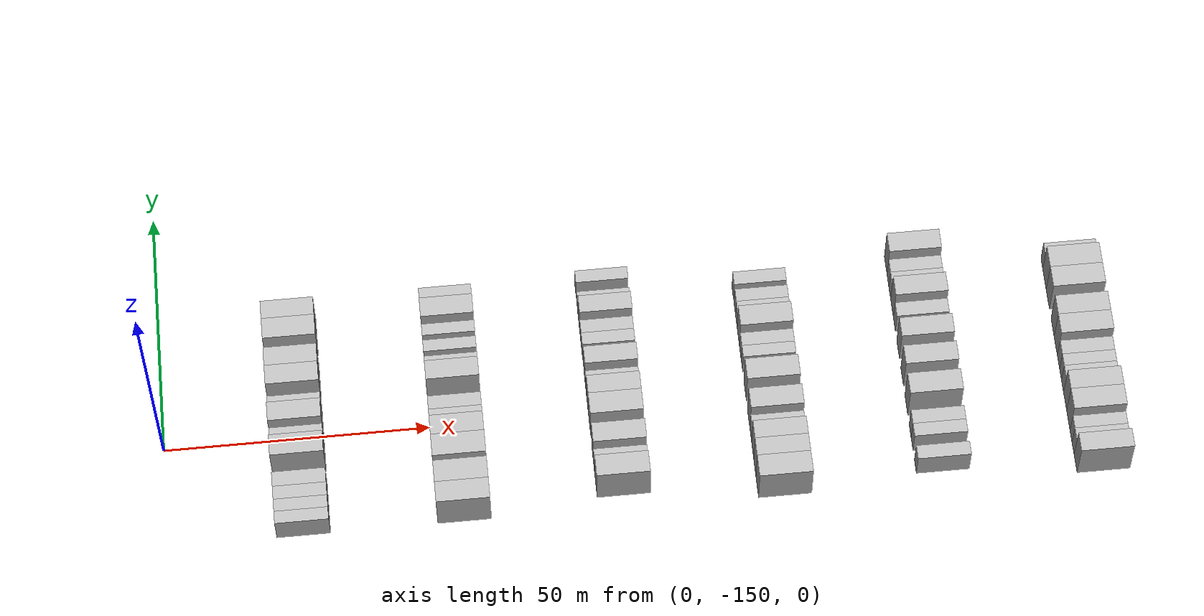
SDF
<sdf version="1.6">
 <world name="default">
  <model name="building_76">
   <static>1</static>
   <pose>25.0000 -168.9437 0 0.000000 0.000000 0.000000</pose>
   <link name="link">
    <pose>0 0 3.00 0 0 0</pose>
    <collision name="collision"><geometry><box><size>10.0000 2.5226 6.0000</size></box></geometry></collision>
    <visual name="visual">
     <cast_shadows>0</cast_shadows>
     <geometry><box><size>10.0000 2.5226 6.0000</size></box></geometry>
     <material>
      <script>
       <uri>model://HANNAS_wall/materials/scripts</uri>
       <uri>model://HANNAS_wall/materials/textures</uri>
       <name>vrc/HANNAS_wall</name>
      </script>
     </material>
    </visual>
   </link>
  </model>
  <model name="building_77">
   <static>1</static>
   <pose>25.0000 -166.4283 0 0.000000 0.000000 0.000000</pose>
   <link name="link">
    <pose>0 0 3.00 0 0 0</pose>
    <collision name="collision"><geometry><box><size>10.0000 2.5082 6.0000</size></box></geometry></collision>
    <visual name="visual">
     <cast_shadows>0</cast_shadows>
     <geometry><box><size>10.0000 2.5082 6.0000</size></box></geometry>
     <material>
      <script>
       <uri>model://HANNAS_wall/materials/scripts</uri>
       <uri>model://HANNAS_wall/materials/textures</uri>
       <name>vrc/HANNAS_wall</name>
      </script>
     </material>
    </visual>
   </link>
  </model>
  <model name="building_78">
   <static>1</static>
   <pose>25.0000 -163.8319 0 0.000000 0.000000 0.000000</pose>
   <link name="link">
    <pose>0 0 3.00 0 0 0</pose>
    <collision name="collision"><geometry><box><size>10.0000 2.6846 6.0000</size></box></geometry></collision>
    <visual name="visual">
     <cast_shadows>0</cast_shadows>
     <geometry><box><size>10.0000 2.6846 6.0000</size></box></geometry>
     <material>
      <script>
       <uri>model://HANNAS_wall/materials/scripts</uri>
       <uri>model://HANNAS_wall/materials/textures</uri>
       <name>vrc/HANNAS_wall</name>
      </script>
     </material>
    </visual>
   </link>
  </model>
  <model name="building_79">
   <static>1</static>
   <pose>25.0000 -161.0014 0 0.000000 0.000000 0.000000</pose>
   <link name="link">
    <pose>0 0 3.00 0 0 0</pose>
    <collision name="collision"><geometry><box><size>10.0000 2.9763 6.0000</size></box></geometry></collision>
    <visual name="visual">
     <cast_shadows>0</cast_shadows>
     <geometry><box><size>10.0000 2.9763 6.0000</size></box></geometry>
     <material>
      <script>
       <uri>model://HANNAS_wall/materials/scripts</uri>
       <uri>model://HANNAS_wall/materials/textures</uri>
       <name>vrc/HANNAS_wall</name>
      </script>
     </material>
    </visual>
   </link>
  </model>
  <model name="building_80">
   <static>1</static>
   <pose>25.0000 -155.3765 0 0.000000 0.000000 0.000000</pose>
   <link name="link">
    <pose>0 0 4.50 0 0 0</pose>
    <collision name="collision"><geometry><box><size>10.0000 4.2736 9.0000</size></box></geometry></collision>
    <visual name="visual">
     <cast_shadows>0</cast_shadows>
     <geometry><box><size>10.0000 4.2736 9.0000</size></box></geometry>
     <material>
      <script>
       <uri>model://HANNAS_wall/materials/scripts</uri>
       <uri>model://HANNAS_wall/materials/textures</uri>
       <name>vrc/HANNAS_wall</name>
      </script>
     </material>
    </visual>
   </link>
  </model>
  <model name="building_81">
   <static>1</static>
   <pose>25.0000 -151.7498 0 0.000000 0.000000 0.000000</pose>
   <link name="link">
    <pose>0 0 3.00 0 0 0</pose>
    <collision name="collision"><geometry><box><size>10.0000 2.9797 6.0000</size></box></geometry></collision>
    <visual name="visual">
     <cast_shadows>0</cast_shadows>
     <geometry><box><size>10.0000 2.9797 6.0000</size></box></geometry>
     <material>
      <script>
       <uri>model://HANNAS_wall/materials/scripts</uri>
       <uri>model://HANNAS_wall/materials/textures</uri>
       <name>vrc/HANNAS_wall</name>
      </script>
     </material>
    </visual>
   </link>
  </model>
  <model name="building_82">
   <static>1</static>
   <pose>25.0000 -148.3177 0 0.000000 0.000000 0.000000</pose>
   <link name="link">
    <pose>0 0 4.50 0 0 0</pose>
    <collision name="collision"><geometry><box><size>10.0000 3.8845 9.0000</size></box></geometry></collision>
    <visual name="visual">
     <cast_shadows>0</cast_shadows>
     <geometry><box><size>10.0000 3.8845 9.0000</size></box></geometry>
     <material>
      <script>
       <uri>model://HANNAS_wall/materials/scripts</uri>
       <uri>model://HANNAS_wall/materials/textures</uri>
       <name>vrc/HANNAS_wall</name>
      </script>
     </material>
    </visual>
   </link>
  </model>
  <model name="building_83">
   <static>1</static>
   <pose>25.0000 -144.9561 0 0.000000 0.000000 0.000000</pose>
   <link name="link">
    <pose>0 0 3.00 0 0 0</pose>
    <collision name="collision"><geometry><box><size>10.0000 2.8387 6.0000</size></box></geometry></collision>
    <visual name="visual">
     <cast_shadows>0</cast_shadows>
     <geometry><box><size>10.0000 2.8387 6.0000</size></box></geometry>
     <material>
      <script>
       <uri>model://HANNAS_wall/materials/scripts</uri>
       <uri>model://HANNAS_wall/materials/textures</uri>
       <name>vrc/HANNAS_wall</name>
      </script>
     </material>
    </visual>
   </link>
  </model>
  <model name="building_84">
   <static>1</static>
   <pose>25.0000 -140.5316 0 0.000000 0.000000 0.000000</pose>
   <link name="link">
    <pose>0 0 4.50 0 0 0</pose>
    <collision name="collision"><geometry><box><size>10.0000 4.0103 9.0000</size></box></geometry></collision>
    <visual name="visual">
     <cast_shadows>0</cast_shadows>
     <geometry><box><size>10.0000 4.0103 9.0000</size></box></geometry>
     <material>
      <script>
       <uri>model://HANNAS_wall/materials/scripts</uri>
       <uri>model://HANNAS_wall/materials/textures</uri>
       <name>vrc/HANNAS_wall</name>
      </script>
     </material>
    </visual>
   </link>
  </model>
  <model name="building_85">
   <static>1</static>
   <pose>25.0000 -136.6237 0 0.000000 0.000000 0.000000</pose>
   <link name="link">
    <pose>0 0 4.50 0 0 0</pose>
    <collision name="collision"><geometry><box><size>10.0000 3.8054 9.0000</size></box></geometry></collision>
    <visual name="visual">
     <cast_shadows>0</cast_shadows>
     <geometry><box><size>10.0000 3.8054 9.0000</size></box></geometry>
     <material>
      <script>
       <uri>model://HANNAS_wall/materials/scripts</uri>
       <uri>model://HANNAS_wall/materials/textures</uri>
       <name>vrc/HANNAS_wall</name>
      </script>
     </material>
    </visual>
   </link>
  </model>
  <model name="building_86">
   <static>1</static>
   <pose>25.0000 -130.5815 0 0.000000 0.000000 0.000000</pose>
   <link name="link">
    <pose>0 0 4.50 0 0 0</pose>
    <collision name="collision"><geometry><box><size>10.0000 4.2789 9.0000</size></box></geometry></collision>
    <visual name="visual">
     <cast_shadows>0</cast_shadows>
     <geometry><box><size>10.0000 4.2789 9.0000</size></box></geometry>
     <material>
      <script>
       <uri>model://HANNAS_wall/materials/scripts</uri>
       <uri>model://HANNAS_wall/materials/textures</uri>
       <name>vrc/HANNAS_wall</name>
      </script>
     </material>
    </visual>
   </link>
  </model>
  <model name="building_87">
   <static>1</static>
   <pose>25.0000 -126.5639 0 0.000000 0.000000 0.000000</pose>
   <link name="link">
    <pose>0 0 4.50 0 0 0</pose>
    <collision name="collision"><geometry><box><size>10.0000 3.7563 9.0000</size></box></geometry></collision>
    <visual name="visual">
     <cast_shadows>0</cast_shadows>
     <geometry><box><size>10.0000 3.7563 9.0000</size></box></geometry>
     <material>
      <script>
       <uri>model://HANNAS_wall/materials/scripts</uri>
       <uri>model://HANNAS_wall/materials/textures</uri>
       <name>vrc/HANNAS_wall</name>
      </script>
     </material>
    </visual>
   </link>
  </model>
  <model name="building_312">
   <static>1</static>
   <pose>55.0000 -168.0703 0 0.000000 0.000000 0.000000</pose>
   <link name="link">
    <pose>0 0 4.50 0 0 0</pose>
    <collision name="collision"><geometry><box><size>10.0000 4.1956 9.0000</size></box></geometry></collision>
    <visual name="visual">
     <cast_shadows>0</cast_shadows>
     <geometry><box><size>10.0000 4.1956 9.0000</size></box></geometry>
     <material>
      <script>
       <uri>model://HANNAS_wall/materials/scripts</uri>
       <uri>model://HANNAS_wall/materials/textures</uri>
       <name>vrc/HANNAS_wall</name>
      </script>
     </material>
    </visual>
   </link>
  </model>
  <model name="building_313">
   <static>1</static>
   <pose>55.0000 -163.7626 0 0.000000 0.000000 0.000000</pose>
   <link name="link">
    <pose>0 0 4.50 0 0 0</pose>
    <collision name="collision"><geometry><box><size>10.0000 4.4199 9.0000</size></box></geometry></collision>
    <visual name="visual">
     <cast_shadows>0</cast_shadows>
     <geometry><box><size>10.0000 4.4199 9.0000</size></box></geometry>
     <material>
      <script>
       <uri>model://HANNAS_wall/materials/scripts</uri>
       <uri>model://HANNAS_wall/materials/textures</uri>
       <name>vrc/HANNAS_wall</name>
      </script>
     </material>
    </visual>
   </link>
  </model>
  <model name="building_314">
   <static>1</static>
   <pose>55.0000 -158.3098 0 0.000000 0.000000 0.000000</pose>
   <link name="link">
    <pose>0 0 4.50 0 0 0</pose>
    <collision name="collision"><geometry><box><size>10.0000 4.4858 9.0000</size></box></geometry></collision>
    <visual name="visual">
     <cast_shadows>0</cast_shadows>
     <geometry><box><size>10.0000 4.4858 9.0000</size></box></geometry>
     <material>
      <script>
       <uri>model://HANNAS_wall/materials/scripts</uri>
       <uri>model://HANNAS_wall/materials/textures</uri>
       <name>vrc/HANNAS_wall</name>
      </script>
     </material>
    </visual>
   </link>
  </model>
  <model name="building_315">
   <static>1</static>
   <pose>55.0000 -154.0762 0 0.000000 0.000000 0.000000</pose>
   <link name="link">
    <pose>0 0 4.50 0 0 0</pose>
    <collision name="collision"><geometry><box><size>10.0000 3.9813 9.0000</size></box></geometry></collision>
    <visual name="visual">
     <cast_shadows>0</cast_shadows>
     <geometry><box><size>10.0000 3.9813 9.0000</size></box></geometry>
     <material>
      <script>
       <uri>model://HANNAS_wall/materials/scripts</uri>
       <uri>model://HANNAS_wall/materials/textures</uri>
       <name>vrc/HANNAS_wall</name>
      </script>
     </material>
    </visual>
   </link>
  </model>
  <model name="building_316">
   <static>1</static>
   <pose>55.0000 -150.6483 0 0.000000 0.000000 0.000000</pose>
   <link name="link">
    <pose>0 0 3.00 0 0 0</pose>
    <collision name="collision"><geometry><box><size>10.0000 2.8746 6.0000</size></box></geometry></collision>
    <visual name="visual">
     <cast_shadows>0</cast_shadows>
     <geometry><box><size>10.0000 2.8746 6.0000</size></box></geometry>
     <material>
      <script>
       <uri>model://HANNAS_wall/materials/scripts</uri>
       <uri>model://HANNAS_wall/materials/textures</uri>
       <name>vrc/HANNAS_wall</name>
      </script>
     </material>
    </visual>
   </link>
  </model>
  <model name="building_317">
   <static>1</static>
   <pose>55.0000 -147.8208 0 0.000000 0.000000 0.000000</pose>
   <link name="link">
    <pose>0 0 3.00 0 0 0</pose>
    <collision name="collision"><geometry><box><size>10.0000 2.7804 6.0000</size></box></geometry></collision>
    <visual name="visual">
     <cast_shadows>0</cast_shadows>
     <geometry><box><size>10.0000 2.7804 6.0000</size></box></geometry>
     <material>
      <script>
       <uri>model://HANNAS_wall/materials/scripts</uri>
       <uri>model://HANNAS_wall/materials/textures</uri>
       <name>vrc/HANNAS_wall</name>
      </script>
     </material>
    </visual>
   </link>
  </model>
  <model name="building_318">
   <static>1</static>
   <pose>55.0000 -142.4525 0 0.000000 0.000000 0.000000</pose>
   <link name="link">
    <pose>0 0 4.50 0 0 0</pose>
    <collision name="collision"><geometry><box><size>10.0000 3.9562 9.0000</size></box></geometry></collision>
    <visual name="visual">
     <cast_shadows>0</cast_shadows>
     <geometry><box><size>10.0000 3.9562 9.0000</size></box></geometry>
     <material>
      <script>
       <uri>model://HANNAS_wall/materials/scripts</uri>
       <uri>model://HANNAS_wall/materials/textures</uri>
       <name>vrc/HANNAS_wall</name>
      </script>
     </material>
    </visual>
   </link>
  </model>
  <model name="building_319">
   <static>1</static>
   <pose>55.0000 -139.1789 0 0.000000 0.000000 0.000000</pose>
   <link name="link">
    <pose>0 0 3.00 0 0 0</pose>
    <collision name="collision"><geometry><box><size>10.0000 2.5912 6.0000</size></box></geometry></collision>
    <visual name="visual">
     <cast_shadows>0</cast_shadows>
     <geometry><box><size>10.0000 2.5912 6.0000</size></box></geometry>
     <material>
      <script>
       <uri>model://HANNAS_wall/materials/scripts</uri>
       <uri>model://HANNAS_wall/materials/textures</uri>
       <name>vrc/HANNAS_wall</name>
      </script>
     </material>
    </visual>
   </link>
  </model>
  <model name="building_320">
   <static>1</static>
   <pose>55.0000 -135.6508 0 0.000000 0.000000 0.000000</pose>
   <link name="link">
    <pose>0 0 3.00 0 0 0</pose>
    <collision name="collision"><geometry><box><size>10.0000 2.4650 6.0000</size></box></geometry></collision>
    <visual name="visual">
     <cast_shadows>0</cast_shadows>
     <geometry><box><size>10.0000 2.4650 6.0000</size></box></geometry>
     <material>
      <script>
       <uri>model://HANNAS_wall/materials/scripts</uri>
       <uri>model://HANNAS_wall/materials/textures</uri>
       <name>vrc/HANNAS_wall</name>
      </script>
     </material>
    </visual>
   </link>
  </model>
  <model name="building_321">
   <static>1</static>
   <pose>55.0000 -132.1974 0 0.000000 0.000000 0.000000</pose>
   <link name="link">
    <pose>0 0 3.00 0 0 0</pose>
    <collision name="collision"><geometry><box><size>10.0000 2.4417 6.0000</size></box></geometry></collision>
    <visual name="visual">
     <cast_shadows>0</cast_shadows>
     <geometry><box><size>10.0000 2.4417 6.0000</size></box></geometry>
     <material>
      <script>
       <uri>model://HANNAS_wall/materials/scripts</uri>
       <uri>model://HANNAS_wall/materials/textures</uri>
       <name>vrc/HANNAS_wall</name>
      </script>
     </material>
    </visual>
   </link>
  </model>
  <model name="building_322">
   <static>1</static>
   <pose>55.0000 -128.9470 0 0.000000 0.000000 0.000000</pose>
   <link name="link">
    <pose>0 0 4.50 0 0 0</pose>
    <collision name="collision"><geometry><box><size>10.0000 4.0592 9.0000</size></box></geometry></collision>
    <visual name="visual">
     <cast_shadows>0</cast_shadows>
     <geometry><box><size>10.0000 4.0592 9.0000</size></box></geometry>
     <material>
      <script>
       <uri>model://HANNAS_wall/materials/scripts</uri>
       <uri>model://HANNAS_wall/materials/textures</uri>
       <name>vrc/HANNAS_wall</name>
      </script>
     </material>
    </visual>
   </link>
  </model>
  <model name="building_323">
   <static>1</static>
   <pose>55.0000 -124.5122 0 0.000000 0.000000 0.000000</pose>
   <link name="link">
    <pose>0 0 3.00 0 0 0</pose>
    <collision name="collision"><geometry><box><size>10.0000 2.8103 6.0000</size></box></geometry></collision>
    <visual name="visual">
     <cast_shadows>0</cast_shadows>
     <geometry><box><size>10.0000 2.8103 6.0000</size></box></geometry>
     <material>
      <script>
       <uri>model://HANNAS_wall/materials/scripts</uri>
       <uri>model://HANNAS_wall/materials/textures</uri>
       <name>vrc/HANNAS_wall</name>
      </script>
     </material>
    </visual>
   </link>
  </model>
  <model name="building_541">
   <static>1</static>
   <pose>85.0000 -165.5335 0 0.000000 0.000000 0.000000</pose>
   <link name="link">
    <pose>0 0 4.50 0 0 0</pose>
    <collision name="collision"><geometry><box><size>10.0000 4.3390 9.0000</size></box></geometry></collision>
    <visual name="visual">
     <cast_shadows>0</cast_shadows>
     <geometry><box><size>10.0000 4.3390 9.0000</size></box></geometry>
     <material>
      <script>
       <uri>model://HANNAS_wall/materials/scripts</uri>
       <uri>model://HANNAS_wall/materials/textures</uri>
       <name>vrc/HANNAS_wall</name>
      </script>
     </material>
    </visual>
   </link>
  </model>
  <model name="building_542">
   <static>1</static>
   <pose>85.0000 -161.9694 0 0.000000 0.000000 0.000000</pose>
   <link name="link">
    <pose>0 0 3.00 0 0 0</pose>
    <collision name="collision"><geometry><box><size>10.0000 2.7892 6.0000</size></box></geometry></collision>
    <visual name="visual">
     <cast_shadows>0</cast_shadows>
     <geometry><box><size>10.0000 2.7892 6.0000</size></box></geometry>
     <material>
      <script>
       <uri>model://HANNAS_wall/materials/scripts</uri>
       <uri>model://HANNAS_wall/materials/textures</uri>
       <name>vrc/HANNAS_wall</name>
      </script>
     </material>
    </visual>
   </link>
  </model>
  <model name="building_543">
   <static>1</static>
   <pose>85.0000 -158.6004 0 0.000000 0.000000 0.000000</pose>
   <link name="link">
    <pose>0 0 4.50 0 0 0</pose>
    <collision name="collision"><geometry><box><size>10.0000 3.9488 9.0000</size></box></geometry></collision>
    <visual name="visual">
     <cast_shadows>0</cast_shadows>
     <geometry><box><size>10.0000 3.9488 9.0000</size></box></geometry>
     <material>
      <script>
       <uri>model://HANNAS_wall/materials/scripts</uri>
       <uri>model://HANNAS_wall/materials/textures</uri>
       <name>vrc/HANNAS_wall</name>
      </script>
     </material>
    </visual>
   </link>
  </model>
  <model name="building_544">
   <static>1</static>
   <pose>85.0000 -152.4462 0 0.000000 0.000000 0.000000</pose>
   <link name="link">
    <pose>0 0 4.50 0 0 0</pose>
    <collision name="collision"><geometry><box><size>10.0000 4.3594 9.0000</size></box></geometry></collision>
    <visual name="visual">
     <cast_shadows>0</cast_shadows>
     <geometry><box><size>10.0000 4.3594 9.0000</size></box></geometry>
     <material>
      <script>
       <uri>model://HANNAS_wall/materials/scripts</uri>
       <uri>model://HANNAS_wall/materials/textures</uri>
       <name>vrc/HANNAS_wall</name>
      </script>
     </material>
    </visual>
   </link>
  </model>
  <model name="building_545">
   <static>1</static>
   <pose>85.0000 -148.4080 0 0.000000 0.000000 0.000000</pose>
   <link name="link">
    <pose>0 0 4.50 0 0 0</pose>
    <collision name="collision"><geometry><box><size>10.0000 3.7171 9.0000</size></box></geometry></collision>
    <visual name="visual">
     <cast_shadows>0</cast_shadows>
     <geometry><box><size>10.0000 3.7171 9.0000</size></box></geometry>
     <material>
      <script>
       <uri>model://HANNAS_wall/materials/scripts</uri>
       <uri>model://HANNAS_wall/materials/textures</uri>
       <name>vrc/HANNAS_wall</name>
      </script>
     </material>
    </visual>
   </link>
  </model>
  <model name="building_546">
   <static>1</static>
   <pose>85.0000 -145.2552 0 0.000000 0.000000 0.000000</pose>
   <link name="link">
    <pose>0 0 3.00 0 0 0</pose>
    <collision name="collision"><geometry><box><size>10.0000 2.5886 6.0000</size></box></geometry></collision>
    <visual name="visual">
     <cast_shadows>0</cast_shadows>
     <geometry><box><size>10.0000 2.5886 6.0000</size></box></geometry>
     <material>
      <script>
       <uri>model://HANNAS_wall/materials/scripts</uri>
       <uri>model://HANNAS_wall/materials/textures</uri>
       <name>vrc/HANNAS_wall</name>
      </script>
     </material>
    </visual>
   </link>
  </model>
  <model name="building_547">
   <static>1</static>
   <pose>85.0000 -142.1517 0 0.000000 0.000000 0.000000</pose>
   <link name="link">
    <pose>0 0 4.50 0 0 0</pose>
    <collision name="collision"><geometry><box><size>10.0000 3.6185 9.0000</size></box></geometry></collision>
    <visual name="visual">
     <cast_shadows>0</cast_shadows>
     <geometry><box><size>10.0000 3.6185 9.0000</size></box></geometry>
     <material>
      <script>
       <uri>model://HANNAS_wall/materials/scripts</uri>
       <uri>model://HANNAS_wall/materials/textures</uri>
       <name>vrc/HANNAS_wall</name>
      </script>
     </material>
    </visual>
   </link>
  </model>
  <model name="building_548">
   <static>1</static>
   <pose>85.0000 -137.0522 0 0.000000 0.000000 0.000000</pose>
   <link name="link">
    <pose>0 0 3.00 0 0 0</pose>
    <collision name="collision"><geometry><box><size>10.0000 2.5805 6.0000</size></box></geometry></collision>
    <visual name="visual">
     <cast_shadows>0</cast_shadows>
     <geometry><box><size>10.0000 2.5805 6.0000</size></box></geometry>
     <material>
      <script>
       <uri>model://HANNAS_wall/materials/scripts</uri>
       <uri>model://HANNAS_wall/materials/textures</uri>
       <name>vrc/HANNAS_wall</name>
      </script>
     </material>
    </visual>
   </link>
  </model>
  <model name="building_549">
   <static>1</static>
   <pose>85.0000 -134.3948 0 0.000000 0.000000 0.000000</pose>
   <link name="link">
    <pose>0 0 3.00 0 0 0</pose>
    <collision name="collision"><geometry><box><size>10.0000 2.7343 6.0000</size></box></geometry></collision>
    <visual name="visual">
     <cast_shadows>0</cast_shadows>
     <geometry><box><size>10.0000 2.7343 6.0000</size></box></geometry>
     <material>
      <script>
       <uri>model://HANNAS_wall/materials/scripts</uri>
       <uri>model://HANNAS_wall/materials/textures</uri>
       <name>vrc/HANNAS_wall</name>
      </script>
     </material>
    </visual>
   </link>
  </model>
  <model name="building_550">
   <static>1</static>
   <pose>85.0000 -131.2102 0 0.000000 0.000000 0.000000</pose>
   <link name="link">
    <pose>0 0 4.50 0 0 0</pose>
    <collision name="collision"><geometry><box><size>10.0000 3.6349 9.0000</size></box></geometry></collision>
    <visual name="visual">
     <cast_shadows>0</cast_shadows>
     <geometry><box><size>10.0000 3.6349 9.0000</size></box></geometry>
     <material>
      <script>
       <uri>model://HANNAS_wall/materials/scripts</uri>
       <uri>model://HANNAS_wall/materials/textures</uri>
       <name>vrc/HANNAS_wall</name>
      </script>
     </material>
    </visual>
   </link>
  </model>
  <model name="building_551">
   <static>1</static>
   <pose>85.0000 -128.1095 0 0.000000 0.000000 0.000000</pose>
   <link name="link">
    <pose>0 0 3.00 0 0 0</pose>
    <collision name="collision"><geometry><box><size>10.0000 2.5664 6.0000</size></box></geometry></collision>
    <visual name="visual">
     <cast_shadows>0</cast_shadows>
     <geometry><box><size>10.0000 2.5664 6.0000</size></box></geometry>
     <material>
      <script>
       <uri>model://HANNAS_wall/materials/scripts</uri>
       <uri>model://HANNAS_wall/materials/textures</uri>
       <name>vrc/HANNAS_wall</name>
      </script>
     </material>
    </visual>
   </link>
  </model>
  <model name="building_552">
   <static>1</static>
   <pose>85.0000 -123.5394 0 0.000000 0.000000 0.000000</pose>
   <link name="link">
    <pose>0 0 3.00 0 0 0</pose>
    <collision name="collision"><geometry><box><size>10.0000 2.5737 6.0000</size></box></geometry></collision>
    <visual name="visual">
     <cast_shadows>0</cast_shadows>
     <geometry><box><size>10.0000 2.5737 6.0000</size></box></geometry>
     <material>
      <script>
       <uri>model://HANNAS_wall/materials/scripts</uri>
       <uri>model://HANNAS_wall/materials/textures</uri>
       <name>vrc/HANNAS_wall</name>
      </script>
     </material>
    </visual>
   </link>
  </model>
  <model name="building_776">
   <static>1</static>
   <pose>115.0000 -168.4978 0 0.000000 0.000000 0.000000</pose>
   <link name="link">
    <pose>0 0 4.50 0 0 0</pose>
    <collision name="collision"><geometry><box><size>10.0000 4.3909 9.0000</size></box></geometry></collision>
    <visual name="visual">
     <cast_shadows>0</cast_shadows>
     <geometry><box><size>10.0000 4.3909 9.0000</size></box></geometry>
     <material>
      <script>
       <uri>model://HANNAS_wall/materials/scripts</uri>
       <uri>model://HANNAS_wall/materials/textures</uri>
       <name>vrc/HANNAS_wall</name>
      </script>
     </material>
    </visual>
   </link>
  </model>
  <model name="building_777">
   <static>1</static>
   <pose>115.0000 -164.5006 0 0.000000 0.000000 0.000000</pose>
   <link name="link">
    <pose>0 0 4.50 0 0 0</pose>
    <collision name="collision"><geometry><box><size>10.0000 3.6035 9.0000</size></box></geometry></collision>
    <visual name="visual">
     <cast_shadows>0</cast_shadows>
     <geometry><box><size>10.0000 3.6035 9.0000</size></box></geometry>
     <material>
      <script>
       <uri>model://HANNAS_wall/materials/scripts</uri>
       <uri>model://HANNAS_wall/materials/textures</uri>
       <name>vrc/HANNAS_wall</name>
      </script>
     </material>
    </visual>
   </link>
  </model>
  <model name="building_778">
   <static>1</static>
   <pose>115.0000 -160.8844 0 0.000000 0.000000 0.000000</pose>
   <link name="link">
    <pose>0 0 4.50 0 0 0</pose>
    <collision name="collision"><geometry><box><size>10.0000 3.6289 9.0000</size></box></geometry></collision>
    <visual name="visual">
     <cast_shadows>0</cast_shadows>
     <geometry><box><size>10.0000 3.6289 9.0000</size></box></geometry>
     <material>
      <script>
       <uri>model://HANNAS_wall/materials/scripts</uri>
       <uri>model://HANNAS_wall/materials/textures</uri>
       <name>vrc/HANNAS_wall</name>
      </script>
     </material>
    </visual>
   </link>
  </model>
  <model name="building_779">
   <static>1</static>
   <pose>115.0000 -157.6997 0 0.000000 0.000000 0.000000</pose>
   <link name="link">
    <pose>0 0 3.00 0 0 0</pose>
    <collision name="collision"><geometry><box><size>10.0000 2.7405 6.0000</size></box></geometry></collision>
    <visual name="visual">
     <cast_shadows>0</cast_shadows>
     <geometry><box><size>10.0000 2.7405 6.0000</size></box></geometry>
     <material>
      <script>
       <uri>model://HANNAS_wall/materials/scripts</uri>
       <uri>model://HANNAS_wall/materials/textures</uri>
       <name>vrc/HANNAS_wall</name>
      </script>
     </material>
    </visual>
   </link>
  </model>
  <model name="building_780">
   <static>1</static>
   <pose>115.0000 -154.2780 0 0.000000 0.000000 0.000000</pose>
   <link name="link">
    <pose>0 0 4.50 0 0 0</pose>
    <collision name="collision"><geometry><box><size>10.0000 4.1030 9.0000</size></box></geometry></collision>
    <visual name="visual">
     <cast_shadows>0</cast_shadows>
     <geometry><box><size>10.0000 4.1030 9.0000</size></box></geometry>
     <material>
      <script>
       <uri>model://HANNAS_wall/materials/scripts</uri>
       <uri>model://HANNAS_wall/materials/textures</uri>
       <name>vrc/HANNAS_wall</name>
      </script>
     </material>
    </visual>
   </link>
  </model>
  <model name="building_781">
   <static>1</static>
   <pose>115.0000 -148.0756 0 0.000000 0.000000 0.000000</pose>
   <link name="link">
    <pose>0 0 4.50 0 0 0</pose>
    <collision name="collision"><geometry><box><size>10.0000 4.3017 9.0000</size></box></geometry></collision>
    <visual name="visual">
     <cast_shadows>0</cast_shadows>
     <geometry><box><size>10.0000 4.3017 9.0000</size></box></geometry>
     <material>
      <script>
       <uri>model://HANNAS_wall/materials/scripts</uri>
       <uri>model://HANNAS_wall/materials/textures</uri>
       <name>vrc/HANNAS_wall</name>
      </script>
     </material>
    </visual>
   </link>
  </model>
  <model name="building_782">
   <static>1</static>
   <pose>115.0000 -142.6944 0 0.000000 0.000000 0.000000</pose>
   <link name="link">
    <pose>0 0 3.00 0 0 0</pose>
    <collision name="collision"><geometry><box><size>10.0000 2.4609 6.0000</size></box></geometry></collision>
    <visual name="visual">
     <cast_shadows>0</cast_shadows>
     <geometry><box><size>10.0000 2.4609 6.0000</size></box></geometry>
     <material>
      <script>
       <uri>model://HANNAS_wall/materials/scripts</uri>
       <uri>model://HANNAS_wall/materials/textures</uri>
       <name>vrc/HANNAS_wall</name>
      </script>
     </material>
    </visual>
   </link>
  </model>
  <model name="building_783">
   <static>1</static>
   <pose>115.0000 -140.0953 0 0.000000 0.000000 0.000000</pose>
   <link name="link">
    <pose>0 0 3.00 0 0 0</pose>
    <collision name="collision"><geometry><box><size>10.0000 2.7372 6.0000</size></box></geometry></collision>
    <visual name="visual">
     <cast_shadows>0</cast_shadows>
     <geometry><box><size>10.0000 2.7372 6.0000</size></box></geometry>
     <material>
      <script>
       <uri>model://HANNAS_wall/materials/scripts</uri>
       <uri>model://HANNAS_wall/materials/textures</uri>
       <name>vrc/HANNAS_wall</name>
      </script>
     </material>
    </visual>
   </link>
  </model>
  <model name="building_784">
   <static>1</static>
   <pose>115.0000 -136.6157 0 0.000000 0.000000 0.000000</pose>
   <link name="link">
    <pose>0 0 4.50 0 0 0</pose>
    <collision name="collision"><geometry><box><size>10.0000 4.2221 9.0000</size></box></geometry></collision>
    <visual name="visual">
     <cast_shadows>0</cast_shadows>
     <geometry><box><size>10.0000 4.2221 9.0000</size></box></geometry>
     <material>
      <script>
       <uri>model://HANNAS_wall/materials/scripts</uri>
       <uri>model://HANNAS_wall/materials/textures</uri>
       <name>vrc/HANNAS_wall</name>
      </script>
     </material>
    </visual>
   </link>
  </model>
  <model name="building_785">
   <static>1</static>
   <pose>115.0000 -133.1751 0 0.000000 0.000000 0.000000</pose>
   <link name="link">
    <pose>0 0 3.00 0 0 0</pose>
    <collision name="collision"><geometry><box><size>10.0000 2.6592 6.0000</size></box></geometry></collision>
    <visual name="visual">
     <cast_shadows>0</cast_shadows>
     <geometry><box><size>10.0000 2.6592 6.0000</size></box></geometry>
     <material>
      <script>
       <uri>model://HANNAS_wall/materials/scripts</uri>
       <uri>model://HANNAS_wall/materials/textures</uri>
       <name>vrc/HANNAS_wall</name>
      </script>
     </material>
    </visual>
   </link>
  </model>
  <model name="building_786">
   <static>1</static>
   <pose>115.0000 -130.5274 0 0.000000 0.000000 0.000000</pose>
   <link name="link">
    <pose>0 0 3.00 0 0 0</pose>
    <collision name="collision"><geometry><box><size>10.0000 2.6362 6.0000</size></box></geometry></collision>
    <visual name="visual">
     <cast_shadows>0</cast_shadows>
     <geometry><box><size>10.0000 2.6362 6.0000</size></box></geometry>
     <material>
      <script>
       <uri>model://HANNAS_wall/materials/scripts</uri>
       <uri>model://HANNAS_wall/materials/textures</uri>
       <name>vrc/HANNAS_wall</name>
      </script>
     </material>
    </visual>
   </link>
  </model>
  <model name="building_787">
   <static>1</static>
   <pose>115.0000 -126.8179 0 0.000000 0.000000 0.000000</pose>
   <link name="link">
    <pose>0 0 3.00 0 0 0</pose>
    <collision name="collision"><geometry><box><size>10.0000 2.7828 6.0000</size></box></geometry></collision>
    <visual name="visual">
     <cast_shadows>0</cast_shadows>
     <geometry><box><size>10.0000 2.7828 6.0000</size></box></geometry>
     <material>
      <script>
       <uri>model://HANNAS_wall/materials/scripts</uri>
       <uri>model://HANNAS_wall/materials/textures</uri>
       <name>vrc/HANNAS_wall</name>
      </script>
     </material>
    </visual>
   </link>
  </model>
  <model name="building_1001">
   <static>1</static>
   <pose>145.0000 -167.1326 0 0.000000 0.000000 0.000000</pose>
   <link name="link">
    <pose>0 0 3.00 0 0 0</pose>
    <collision name="collision"><geometry><box><size>10.0000 2.7938 6.0000</size></box></geometry></collision>
    <visual name="visual">
     <cast_shadows>0</cast_shadows>
     <geometry><box><size>10.0000 2.7938 6.0000</size></box></geometry>
     <material>
      <script>
       <uri>model://HANNAS_wall/materials/scripts</uri>
       <uri>model://HANNAS_wall/materials/textures</uri>
       <name>vrc/HANNAS_wall</name>
      </script>
     </material>
    </visual>
   </link>
  </model>
  <model name="building_1002">
   <static>1</static>
   <pose>145.0000 -162.3981 0 0.000000 0.000000 0.000000</pose>
   <link name="link">
    <pose>0 0 3.00 0 0 0</pose>
    <collision name="collision"><geometry><box><size>10.0000 2.6753 6.0000</size></box></geometry></collision>
    <visual name="visual">
     <cast_shadows>0</cast_shadows>
     <geometry><box><size>10.0000 2.6753 6.0000</size></box></geometry>
     <material>
      <script>
       <uri>model://HANNAS_wall/materials/scripts</uri>
       <uri>model://HANNAS_wall/materials/textures</uri>
       <name>vrc/HANNAS_wall</name>
      </script>
     </material>
    </visual>
   </link>
  </model>
  <model name="building_1003">
   <static>1</static>
   <pose>145.0000 -159.6450 0 0.000000 0.000000 0.000000</pose>
   <link name="link">
    <pose>0 0 3.00 0 0 0</pose>
    <collision name="collision"><geometry><box><size>10.0000 2.8309 6.0000</size></box></geometry></collision>
    <visual name="visual">
     <cast_shadows>0</cast_shadows>
     <geometry><box><size>10.0000 2.8309 6.0000</size></box></geometry>
     <material>
      <script>
       <uri>model://HANNAS_wall/materials/scripts</uri>
       <uri>model://HANNAS_wall/materials/textures</uri>
       <name>vrc/HANNAS_wall</name>
      </script>
     </material>
    </visual>
   </link>
  </model>
  <model name="building_1004">
   <static>1</static>
   <pose>145.0000 -154.0876 0 0.000000 0.000000 0.000000</pose>
   <link name="link">
    <pose>0 0 4.50 0 0 0</pose>
    <collision name="collision"><geometry><box><size>10.0000 4.2838 9.0000</size></box></geometry></collision>
    <visual name="visual">
     <cast_shadows>0</cast_shadows>
     <geometry><box><size>10.0000 4.2838 9.0000</size></box></geometry>
     <material>
      <script>
       <uri>model://HANNAS_wall/materials/scripts</uri>
       <uri>model://HANNAS_wall/materials/textures</uri>
       <name>vrc/HANNAS_wall</name>
      </script>
     </material>
    </visual>
   </link>
  </model>
  <model name="building_1005">
   <static>1</static>
   <pose>145.0000 -147.9858 0 0.000000 0.000000 0.000000</pose>
   <link name="link">
    <pose>0 0 4.50 0 0 0</pose>
    <collision name="collision"><geometry><box><size>10.0000 3.9200 9.0000</size></box></geometry></collision>
    <visual name="visual">
     <cast_shadows>0</cast_shadows>
     <geometry><box><size>10.0000 3.9200 9.0000</size></box></geometry>
     <material>
      <script>
       <uri>model://HANNAS_wall/materials/scripts</uri>
       <uri>model://HANNAS_wall/materials/textures</uri>
       <name>vrc/HANNAS_wall</name>
      </script>
     </material>
    </visual>
   </link>
  </model>
  <model name="building_1006">
   <static>1</static>
   <pose>145.0000 -142.0435 0 0.000000 0.000000 0.000000</pose>
   <link name="link">
    <pose>0 0 4.50 0 0 0</pose>
    <collision name="collision"><geometry><box><size>10.0000 3.9645 9.0000</size></box></geometry></collision>
    <visual name="visual">
     <cast_shadows>0</cast_shadows>
     <geometry><box><size>10.0000 3.9645 9.0000</size></box></geometry>
     <material>
      <script>
       <uri>model://HANNAS_wall/materials/scripts</uri>
       <uri>model://HANNAS_wall/materials/textures</uri>
       <name>vrc/HANNAS_wall</name>
      </script>
     </material>
    </visual>
   </link>
  </model>
  <model name="building_1007">
   <static>1</static>
   <pose>145.0000 -136.5767 0 0.000000 0.000000 0.000000</pose>
   <link name="link">
    <pose>0 0 3.00 0 0 0</pose>
    <collision name="collision"><geometry><box><size>10.0000 2.9692 6.0000</size></box></geometry></collision>
    <visual name="visual">
     <cast_shadows>0</cast_shadows>
     <geometry><box><size>10.0000 2.9692 6.0000</size></box></geometry>
     <material>
      <script>
       <uri>model://HANNAS_wall/materials/scripts</uri>
       <uri>model://HANNAS_wall/materials/textures</uri>
       <name>vrc/HANNAS_wall</name>
      </script>
     </material>
    </visual>
   </link>
  </model>
  <model name="building_1008">
   <static>1</static>
   <pose>145.0000 -133.0734 0 0.000000 0.000000 0.000000</pose>
   <link name="link">
    <pose>0 0 4.50 0 0 0</pose>
    <collision name="collision"><geometry><box><size>10.0000 4.0373 9.0000</size></box></geometry></collision>
    <visual name="visual">
     <cast_shadows>0</cast_shadows>
     <geometry><box><size>10.0000 4.0373 9.0000</size></box></geometry>
     <material>
      <script>
       <uri>model://HANNAS_wall/materials/scripts</uri>
       <uri>model://HANNAS_wall/materials/textures</uri>
       <name>vrc/HANNAS_wall</name>
      </script>
     </material>
    </visual>
   </link>
  </model>
  <model name="building_1009">
   <static>1</static>
   <pose>145.0000 -129.7165 0 0.000000 0.000000 0.000000</pose>
   <link name="link">
    <pose>0 0 3.00 0 0 0</pose>
    <collision name="collision"><geometry><box><size>10.0000 2.6765 6.0000</size></box></geometry></collision>
    <visual name="visual">
     <cast_shadows>0</cast_shadows>
     <geometry><box><size>10.0000 2.6765 6.0000</size></box></geometry>
     <material>
      <script>
       <uri>model://HANNAS_wall/materials/scripts</uri>
       <uri>model://HANNAS_wall/materials/textures</uri>
       <name>vrc/HANNAS_wall</name>
      </script>
     </material>
    </visual>
   </link>
  </model>
  <model name="building_1010">
   <static>1</static>
   <pose>145.0000 -126.9911 0 0.000000 0.000000 0.000000</pose>
   <link name="link">
    <pose>0 0 3.00 0 0 0</pose>
    <collision name="collision"><geometry><box><size>10.0000 2.7742 6.0000</size></box></geometry></collision>
    <visual name="visual">
     <cast_shadows>0</cast_shadows>
     <geometry><box><size>10.0000 2.7742 6.0000</size></box></geometry>
     <material>
      <script>
       <uri>model://HANNAS_wall/materials/scripts</uri>
       <uri>model://HANNAS_wall/materials/textures</uri>
       <name>vrc/HANNAS_wall</name>
      </script>
     </material>
    </visual>
   </link>
  </model>
  <model name="building_1011">
   <static>1</static>
   <pose>145.0000 -123.5823 0 0.000000 0.000000 0.000000</pose>
   <link name="link">
    <pose>0 0 4.50 0 0 0</pose>
    <collision name="collision"><geometry><box><size>10.0000 4.0435 9.0000</size></box></geometry></collision>
    <visual name="visual">
     <cast_shadows>0</cast_shadows>
     <geometry><box><size>10.0000 4.0435 9.0000</size></box></geometry>
     <material>
      <script>
       <uri>model://HANNAS_wall/materials/scripts</uri>
       <uri>model://HANNAS_wall/materials/textures</uri>
       <name>vrc/HANNAS_wall</name>
      </script>
     </material>
    </visual>
   </link>
  </model>
  <model name="building_1220">
   <static>1</static>
   <pose>175.0000 -169.4509 0 0.000000 0.000000 0.000000</pose>
   <link name="link">
    <pose>0 0 4.50 0 0 0</pose>
    <collision name="collision"><geometry><box><size>10.0000 3.7611 9.0000</size></box></geometry></collision>
    <visual name="visual">
     <cast_shadows>0</cast_shadows>
     <geometry><box><size>10.0000 3.7611 9.0000</size></box></geometry>
     <material>
      <script>
       <uri>model://HANNAS_wall/materials/scripts</uri>
       <uri>model://HANNAS_wall/materials/textures</uri>
       <name>vrc/HANNAS_wall</name>
      </script>
     </material>
    </visual>
   </link>
  </model>
  <model name="building_1221">
   <static>1</static>
   <pose>175.0000 -166.2676 0 0.000000 0.000000 0.000000</pose>
   <link name="link">
    <pose>0 0 3.00 0 0 0</pose>
    <collision name="collision"><geometry><box><size>10.0000 2.6055 6.0000</size></box></geometry></collision>
    <visual name="visual">
     <cast_shadows>0</cast_shadows>
     <geometry><box><size>10.0000 2.6055 6.0000</size></box></geometry>
     <material>
      <script>
       <uri>model://HANNAS_wall/materials/scripts</uri>
       <uri>model://HANNAS_wall/materials/textures</uri>
       <name>vrc/HANNAS_wall</name>
      </script>
     </material>
    </visual>
   </link>
  </model>
  <model name="building_1222">
   <static>1</static>
   <pose>175.0000 -163.6823 0 0.000000 0.000000 0.000000</pose>
   <link name="link">
    <pose>0 0 3.00 0 0 0</pose>
    <collision name="collision"><geometry><box><size>10.0000 2.5651 6.0000</size></box></geometry></collision>
    <visual name="visual">
     <cast_shadows>0</cast_shadows>
     <geometry><box><size>10.0000 2.5651 6.0000</size></box></geometry>
     <material>
      <script>
       <uri>model://HANNAS_wall/materials/scripts</uri>
       <uri>model://HANNAS_wall/materials/textures</uri>
       <name>vrc/HANNAS_wall</name>
      </script>
     </material>
    </visual>
   </link>
  </model>
  <model name="building_1223">
   <static>1</static>
   <pose>175.0000 -160.2844 0 0.000000 0.000000 0.000000</pose>
   <link name="link">
    <pose>0 0 4.50 0 0 0</pose>
    <collision name="collision"><geometry><box><size>10.0000 4.2306 9.0000</size></box></geometry></collision>
    <visual name="visual">
     <cast_shadows>0</cast_shadows>
     <geometry><box><size>10.0000 4.2306 9.0000</size></box></geometry>
     <material>
      <script>
       <uri>model://HANNAS_wall/materials/scripts</uri>
       <uri>model://HANNAS_wall/materials/textures</uri>
       <name>vrc/HANNAS_wall</name>
      </script>
     </material>
    </visual>
   </link>
  </model>
  <model name="building_1224">
   <static>1</static>
   <pose>175.0000 -156.2262 0 0.000000 0.000000 0.000000</pose>
   <link name="link">
    <pose>0 0 4.50 0 0 0</pose>
    <collision name="collision"><geometry><box><size>10.0000 3.8859 9.0000</size></box></geometry></collision>
    <visual name="visual">
     <cast_shadows>0</cast_shadows>
     <geometry><box><size>10.0000 3.8859 9.0000</size></box></geometry>
     <material>
      <script>
       <uri>model://HANNAS_wall/materials/scripts</uri>
       <uri>model://HANNAS_wall/materials/textures</uri>
       <name>vrc/HANNAS_wall</name>
      </script>
     </material>
    </visual>
   </link>
  </model>
  <model name="building_1225">
   <static>1</static>
   <pose>175.0000 -152.9509 0 0.000000 0.000000 0.000000</pose>
   <link name="link">
    <pose>0 0 3.00 0 0 0</pose>
    <collision name="collision"><geometry><box><size>10.0000 2.6648 6.0000</size></box></geometry></collision>
    <visual name="visual">
     <cast_shadows>0</cast_shadows>
     <geometry><box><size>10.0000 2.6648 6.0000</size></box></geometry>
     <material>
      <script>
       <uri>model://HANNAS_wall/materials/scripts</uri>
       <uri>model://HANNAS_wall/materials/textures</uri>
       <name>vrc/HANNAS_wall</name>
      </script>
     </material>
    </visual>
   </link>
  </model>
  <model name="building_1226">
   <static>1</static>
   <pose>175.0000 -150.3931 0 0.000000 0.000000 0.000000</pose>
   <link name="link">
    <pose>0 0 3.00 0 0 0</pose>
    <collision name="collision"><geometry><box><size>10.0000 2.4508 6.0000</size></box></geometry></collision>
    <visual name="visual">
     <cast_shadows>0</cast_shadows>
     <geometry><box><size>10.0000 2.4508 6.0000</size></box></geometry>
     <material>
      <script>
       <uri>model://HANNAS_wall/materials/scripts</uri>
       <uri>model://HANNAS_wall/materials/textures</uri>
       <name>vrc/HANNAS_wall</name>
      </script>
     </material>
    </visual>
   </link>
  </model>
  <model name="building_1227">
   <static>1</static>
   <pose>175.0000 -147.7164 0 0.000000 0.000000 0.000000</pose>
   <link name="link">
    <pose>0 0 3.00 0 0 0</pose>
    <collision name="collision"><geometry><box><size>10.0000 2.9025 6.0000</size></box></geometry></collision>
    <visual name="visual">
     <cast_shadows>0</cast_shadows>
     <geometry><box><size>10.0000 2.9025 6.0000</size></box></geometry>
     <material>
      <script>
       <uri>model://HANNAS_wall/materials/scripts</uri>
       <uri>model://HANNAS_wall/materials/textures</uri>
       <name>vrc/HANNAS_wall</name>
      </script>
     </material>
    </visual>
   </link>
  </model>
  <model name="building_1228">
   <static>1</static>
   <pose>175.0000 -144.2153 0 0.000000 0.000000 0.000000</pose>
   <link name="link">
    <pose>0 0 4.50 0 0 0</pose>
    <collision name="collision"><geometry><box><size>10.0000 4.0997 9.0000</size></box></geometry></collision>
    <visual name="visual">
     <cast_shadows>0</cast_shadows>
     <geometry><box><size>10.0000 4.0997 9.0000</size></box></geometry>
     <material>
      <script>
       <uri>model://HANNAS_wall/materials/scripts</uri>
       <uri>model://HANNAS_wall/materials/textures</uri>
       <name>vrc/HANNAS_wall</name>
      </script>
     </material>
    </visual>
   </link>
  </model>
  <model name="building_1229">
   <static>1</static>
   <pose>175.0000 -140.1546 0 0.000000 0.000000 0.000000</pose>
   <link name="link">
    <pose>0 0 4.50 0 0 0</pose>
    <collision name="collision"><geometry><box><size>10.0000 4.0216 9.0000</size></box></geometry></collision>
    <visual name="visual">
     <cast_shadows>0</cast_shadows>
     <geometry><box><size>10.0000 4.0216 9.0000</size></box></geometry>
     <material>
      <script>
       <uri>model://HANNAS_wall/materials/scripts</uri>
       <uri>model://HANNAS_wall/materials/textures</uri>
       <name>vrc/HANNAS_wall</name>
      </script>
     </material>
    </visual>
   </link>
  </model>
  <model name="building_1230">
   <static>1</static>
   <pose>175.0000 -133.9953 0 0.000000 0.000000 0.000000</pose>
   <link name="link">
    <pose>0 0 4.50 0 0 0</pose>
    <collision name="collision"><geometry><box><size>10.0000 4.2970 9.0000</size></box></geometry></collision>
    <visual name="visual">
     <cast_shadows>0</cast_shadows>
     <geometry><box><size>10.0000 4.2970 9.0000</size></box></geometry>
     <material>
      <script>
       <uri>model://HANNAS_wall/materials/scripts</uri>
       <uri>model://HANNAS_wall/materials/textures</uri>
       <name>vrc/HANNAS_wall</name>
      </script>
     </material>
    </visual>
   </link>
  </model>
  <model name="building_1231">
   <static>1</static>
   <pose>175.0000 -129.6165 0 0.000000 0.000000 0.000000</pose>
   <link name="link">
    <pose>0 0 4.50 0 0 0</pose>
    <collision name="collision"><geometry><box><size>10.0000 4.4605 9.0000</size></box></geometry></collision>
    <visual name="visual">
     <cast_shadows>0</cast_shadows>
     <geometry><box><size>10.0000 4.4605 9.0000</size></box></geometry>
     <material>
      <script>
       <uri>model://HANNAS_wall/materials/scripts</uri>
       <uri>model://HANNAS_wall/materials/textures</uri>
       <name>vrc/HANNAS_wall</name>
      </script>
     </material>
    </visual>
   </link>
  </model>
  <model name="building_1232">
   <static>1</static>
   <pose>175.0000 -126.1657 0 0.000000 0.000000 0.000000</pose>
   <link name="link">
    <pose>0 0 3.00 0 0 0</pose>
    <collision name="collision"><geometry><box><size>10.0000 2.4412 6.0000</size></box></geometry></collision>
    <visual name="visual">
     <cast_shadows>0</cast_shadows>
     <geometry><box><size>10.0000 2.4412 6.0000</size></box></geometry>
     <material>
      <script>
       <uri>model://HANNAS_wall/materials/scripts</uri>
       <uri>model://HANNAS_wall/materials/textures</uri>
       <name>vrc/HANNAS_wall</name>
      </script>
     </material>
    </visual>
   </link>
  </model>
 </world>
</sdf>
